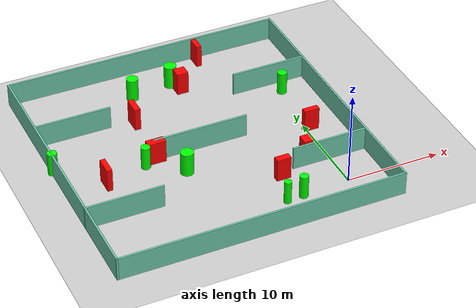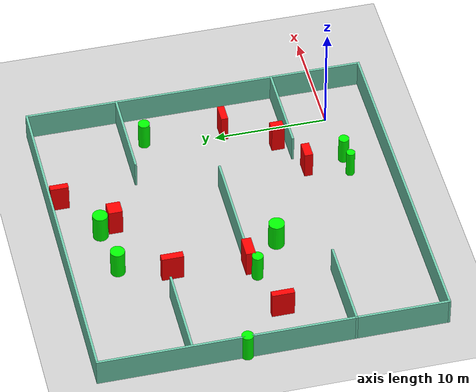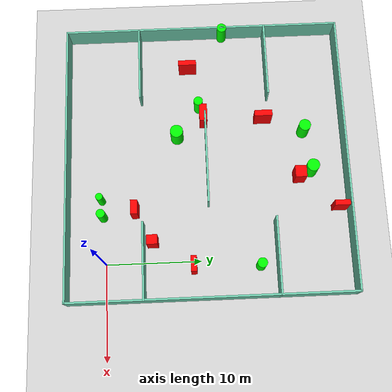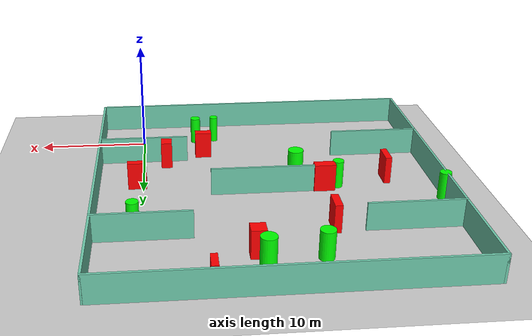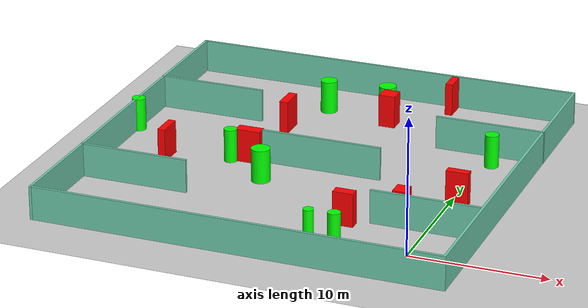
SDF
<sdf version="1.7">
 <world name="default">
  <light name="sun" type="directional">
   <pose>0 0 10 0 -0 0</pose>
   <diffuse>0.8 0.8 0.8 1</diffuse>
   <specular>0.2 0.2 0.2 1</specular>
   <attenuation>
    <range>1000</range>
    <constant>0.9</constant>
    <linear>0.01</linear>
    <quadratic>0.001</quadratic>
   </attenuation>
   <direction>-0.5 0.1 -0.9</direction>
   <spot><inner_angle>0</inner_angle><outer_angle>0</outer_angle><falloff>0</falloff></spot>
  </light>
  <model name="ground_plane">
   <static>1</static>
   <link name="link">
    <collision name="collision">
     <geometry><plane><normal>0 0 1</normal><size>100 100</size></plane></geometry>
     <surface>
      <contact><collide_bitmask>65535</collide_bitmask></contact>
      <friction><ode><mu>100</mu><mu2>50</mu2></ode></friction>
     </surface>
    </collision>
    <visual name="visual">
     <cast_shadows>0</cast_shadows>
     <geometry><plane><normal>0 0 1</normal><size>100 100</size></plane></geometry>
     <material>
      <script><uri>file://media/materials/scripts/gazebo.material</uri><name>Gazebo/Grey</name></script>
     </material>
    </visual>
   </link>
  </model>
  <gravity>0 0 -9.8</gravity>
  <magnetic_field>6e-06 2.3e-05 -4.2e-05</magnetic_field>
  <atmosphere type="adiabatic"/>
  <physics type="ode">
   <max_step_size>0.001</max_step_size>
   <real_time_factor>1</real_time_factor>
   <real_time_update_rate>1000</real_time_update_rate>
  </physics>
  <scene><ambient>0.4 0.4 0.4 1</ambient><background>0.7 0.7 0.7 1</background><shadows>1</shadows></scene>
  <spherical_coordinates>
   <surface_model>EARTH_WGS84</surface_model>
   <latitude_deg>0</latitude_deg>
   <longitude_deg>0</longitude_deg>
   <elevation>0</elevation>
   <heading_deg>0</heading_deg>
  </spherical_coordinates>
  <model name="my_base_walls">
   <link name="Wall_10">
    <collision name="Wall_10_Collision">
     <geometry><box><size>8.2 0.2 2.5</size></box></geometry>
     <pose>0 0 1.25 0 -0 0</pose>
    </collision>
    <visual name="Wall_10_Visual">
     <pose>0 0 1.25 0 -0 0</pose>
     <geometry><box><size>8.2 0.2 2.5</size></box></geometry>
     <material>
      <script><uri>file://media/materials/scripts/gazebo.material</uri><name>Gazebo/Grey</name></script>
      <ambient>0.435294 0.796078 0.67451 1</ambient>
     </material>
     <meta><layer>0</layer></meta>
    </visual>
    <pose>-11 -7 0 0 -0 0</pose>
   </link>
   <link name="Wall_12">
    <collision name="Wall_12_Collision">
     <geometry><box><size>8.2 0.2 2.5</size></box></geometry>
     <pose>0 0 1.25 0 -0 0</pose>
    </collision>
    <visual name="Wall_12_Visual">
     <pose>0 0 1.25 0 -0 0</pose>
     <geometry><box><size>8.2 0.2 2.5</size></box></geometry>
     <material>
      <script><uri>file://media/materials/scripts/gazebo.material</uri><name>Gazebo/Grey</name></script>
      <ambient>0.435294 0.796078 0.67451 1</ambient>
     </material>
     <meta><layer>0</layer></meta>
    </visual>
    <pose>-11 7 0 0 -0 0</pose>
   </link>
   <link name="Wall_14">
    <collision name="Wall_14_Collision">
     <geometry><box><size>8.2 0.2 2.5</size></box></geometry>
     <pose>0 0 1.25 0 -0 0</pose>
    </collision>
    <visual name="Wall_14_Visual">
     <pose>0 0 1.25 0 -0 0</pose>
     <geometry><box><size>8.2 0.2 2.5</size></box></geometry>
     <material>
      <script><uri>file://media/materials/scripts/gazebo.material</uri><name>Gazebo/Grey</name></script>
      <ambient>0.435294 0.796078 0.67451 1</ambient>
     </material>
     <meta><layer>0</layer></meta>
    </visual>
    <pose>11 7 0 0 -0 3.14159</pose>
   </link>
   <link name="Wall_16">
    <collision name="Wall_16_Collision">
     <geometry><box><size>10.2 0.2 2.5</size></box></geometry>
     <pose>0 0 1.25 0 -0 0</pose>
    </collision>
    <visual name="Wall_16_Visual">
     <pose>0 0 1.25 0 -0 0</pose>
     <geometry><box><size>10.2 0.2 2.5</size></box></geometry>
     <material>
      <script><uri>file://media/materials/scripts/gazebo.material</uri><name>Gazebo/Grey</name></script>
      <ambient>0.435294 0.796078 0.67451 1</ambient>
     </material>
     <meta><layer>0</layer></meta>
    </visual>
    <pose>0 0 0 0 -0 3.14159</pose>
   </link>
   <link name="Wall_2">
    <collision name="Wall_2_Collision">
     <geometry><box><size>30.2 0.2 2.5</size></box></geometry>
     <pose>0 0 1.25 0 -0 0</pose>
    </collision>
    <visual name="Wall_2_Visual">
     <pose>0 0 1.25 0 -0 0</pose>
     <geometry><box><size>30.2 0.2 2.5</size></box></geometry>
     <material>
      <script><uri>file://media/materials/scripts/gazebo.material</uri><name>Gazebo/Grey</name></script>
      <ambient>0.435294 0.796078 0.67451 1</ambient>
     </material>
     <meta><layer>0</layer></meta>
    </visual>
    <pose>0 -15 0 0 -0 3.14159</pose>
   </link>
   <link name="Wall_3">
    <collision name="Wall_3_Collision">
     <geometry><box><size>30.2 0.2 2.5</size></box></geometry>
     <pose>0 0 1.25 0 -0 0</pose>
    </collision>
    <visual name="Wall_3_Visual">
     <pose>0 0 1.25 0 -0 0</pose>
     <geometry><box><size>30.2 0.2 2.5</size></box></geometry>
     <material>
      <script><uri>file://media/materials/scripts/gazebo.material</uri><name>Gazebo/Grey</name></script>
      <ambient>0.435294 0.796078 0.67451 1</ambient>
     </material>
     <meta><layer>0</layer></meta>
    </visual>
    <pose>-15 0 0 0 -0 1.5708</pose>
   </link>
   <link name="Wall_4">
    <collision name="Wall_4_Collision">
     <geometry><box><size>30.2 0.2 2.5</size></box></geometry>
     <pose>0 0 1.25 0 -0 0</pose>
    </collision>
    <visual name="Wall_4_Visual">
     <pose>0 0 1.25 0 -0 0</pose>
     <geometry><box><size>30.2 0.2 2.5</size></box></geometry>
     <material>
      <script><uri>file://media/materials/scripts/gazebo.material</uri><name>Gazebo/Grey</name></script>
      <ambient>0.435294 0.796078 0.67451 1</ambient>
     </material>
     <meta><layer>0</layer></meta>
    </visual>
    <pose>0 15 0 0 -0 0</pose>
   </link>
   <link name="Wall_6">
    <collision name="Wall_6_Collision">
     <geometry><box><size>30.2 0.2 2.5</size></box></geometry>
     <pose>0 0 1.25 0 -0 0</pose>
    </collision>
    <visual name="Wall_6_Visual">
     <pose>0 0 1.25 0 -0 0</pose>
     <geometry><box><size>30.2 0.2 2.5</size></box></geometry>
     <material>
      <script><uri>file://media/materials/scripts/gazebo.material</uri><name>Gazebo/Grey</name></script>
      <ambient>0.435294 0.796078 0.67451 1</ambient>
     </material>
     <meta><layer>0</layer></meta>
    </visual>
    <pose>15 0 0 0 -0 1.5708</pose>
   </link>
   <link name="Wall_8">
    <collision name="Wall_8_Collision">
     <geometry><box><size>8.2 0.2 2.5</size></box></geometry>
     <pose>0 0 1.25 0 -0 0</pose>
    </collision>
    <visual name="Wall_8_Visual">
     <pose>0 0 1.25 0 -0 0</pose>
     <geometry><box><size>8.2 0.2 2.5</size></box></geometry>
     <material>
      <script><uri>file://media/materials/scripts/gazebo.material</uri><name>Gazebo/Grey</name></script>
      <ambient>0.435294 0.796078 0.67451 1</ambient>
     </material>
     <meta><layer>0</layer></meta>
    </visual>
    <pose>11 -7 0 0 -0 3.14159</pose>
   </link>
   <static>1</static>
   <pose>-11 11 0 0 -0 0</pose>
  </model>
  <model name="cylinder1">
   <static>1</static>
   <link name="link">
    <inertial>
     <mass>1</mass>
     <inertia><ixx>0.5</ixx><ixy>0</ixy><ixz>0</ixz><iyy>0.5</iyy><iyz>0</iyz><izz>1</izz></inertia>
    </inertial>
    <collision name="collision">
     <geometry><cylinder><radius>0.5124069826570194</radius><length>2.5</length></cylinder></geometry>
    </collision>
    <visual name="visual">
     <geometry><cylinder><radius>0.5124069826570194</radius><length>2.5</length></cylinder></geometry>
     <material>
      <ambient>0 1 0 1</ambient>
      <diffuse>0 1 0 1</diffuse>
      <specular>0.1 0.1 0.1 1</specular>
      <emissive>0 0 0 0</emissive>
     </material>
    </visual>
   </link>
   <pose>-25.911758618130886 13.280358795591937 1.25 0 0 0</pose>
  </model>
  <model name="cylinder2">
   <static>1</static>
   <link name="link">
    <inertial>
     <mass>1</mass>
     <inertia><ixx>0.5</ixx><ixy>0</ixy><ixz>0</ixz><iyy>0.5</iyy><iyz>0</iyz><izz>1</izz></inertia>
    </inertial>
    <collision name="collision">
     <geometry><cylinder><radius>0.6716190517138798</radius><length>2.5</length></cylinder></geometry>
    </collision>
    <visual name="visual">
     <geometry><cylinder><radius>0.6716190517138798</radius><length>2.5</length></cylinder></geometry>
     <material>
      <ambient>0 1 0 1</ambient>
      <diffuse>0 1 0 1</diffuse>
      <specular>0.1 0.1 0.1 1</specular>
      <emissive>0 0 0 0</emissive>
     </material>
    </visual>
   </link>
   <pose>-9.434324635482298 22.26704711069265 1.25 0 0 0</pose>
  </model>
  <model name="cylinder3">
   <static>1</static>
   <link name="link">
    <inertial>
     <mass>1</mass>
     <inertia><ixx>0.5</ixx><ixy>0</ixy><ixz>0</ixz><iyy>0.5</iyy><iyz>0</iyz><izz>1</izz></inertia>
    </inertial>
    <collision name="collision">
     <geometry><cylinder><radius>0.6974398194357186</radius><length>2.5</length></cylinder></geometry>
    </collision>
    <visual name="visual">
     <geometry><cylinder><radius>0.6974398194357186</radius><length>2.5</length></cylinder></geometry>
     <material>
      <ambient>0 1 0 1</ambient>
      <diffuse>0 1 0 1</diffuse>
      <specular>0.1 0.1 0.1 1</specular>
      <emissive>0 0 0 0</emissive>
     </material>
    </visual>
   </link>
   <pose>-13.825108734730957 7.853250381351497 1.25 0 0 0</pose>
  </model>
  <model name="cylinder4">
   <static>1</static>
   <link name="link">
    <inertial>
     <mass>1</mass>
     <inertia><ixx>0.5</ixx><ixy>0</ixy><ixz>0</ixz><iyy>0.5</iyy><iyz>0</iyz><izz>1</izz></inertia>
    </inertial>
    <collision name="collision">
     <geometry><cylinder><radius>0.37998305058584153</radius><length>2.5</length></cylinder></geometry>
    </collision>
    <visual name="visual">
     <geometry><cylinder><radius>0.37998305058584153</radius><length>2.5</length></cylinder></geometry>
     <material>
      <ambient>0 1 0 1</ambient>
      <diffuse>0 1 0 1</diffuse>
      <specular>0.1 0.1 0.1 1</specular>
      <emissive>0 0 0 0</emissive>
     </material>
    </visual>
   </link>
   <pose>-6.897828882217198 -0.46548931539672944 1.25 0 0 0</pose>
  </model>
  <model name="cylinder5">
   <static>1</static>
   <link name="link">
    <inertial>
     <mass>1</mass>
     <inertia><ixx>0.5</ixx><ixy>0</ixy><ixz>0</ixz><iyy>0.5</iyy><iyz>0</iyz><izz>1</izz></inertia>
    </inertial>
    <collision name="collision">
     <geometry><cylinder><radius>0.4608420664067292</radius><length>2.5</length></cylinder></geometry>
    </collision>
    <visual name="visual">
     <geometry><cylinder><radius>0.4608420664067292</radius><length>2.5</length></cylinder></geometry>
     <material>
      <ambient>0 1 0 1</ambient>
      <diffuse>0 1 0 1</diffuse>
      <specular>0.1 0.1 0.1 1</specular>
      <emissive>0 0 0 0</emissive>
     </material>
    </visual>
   </link>
   <pose>-5.084694465875703 -0.3237903729176974 1.25 0 0 0</pose>
  </model>
  <model name="cylinder6">
   <static>1</static>
   <link name="link">
    <inertial>
     <mass>1</mass>
     <inertia><ixx>0.5</ixx><ixy>0</ixy><ixz>0</ixz><iyy>0.5</iyy><iyz>0</iyz><izz>1</izz></inertia>
    </inertial>
    <collision name="collision">
     <geometry><cylinder><radius>0.48729648969232847</radius><length>2.5</length></cylinder></geometry>
    </collision>
    <visual name="visual">
     <geometry><cylinder><radius>0.48729648969232847</radius><length>2.5</length></cylinder></geometry>
     <material>
      <ambient>0 1 0 1</ambient>
      <diffuse>0 1 0 1</diffuse>
      <specular>0.1 0.1 0.1 1</specular>
      <emissive>0 0 0 0</emissive>
     </material>
    </visual>
   </link>
   <pose>-17.214389309195166 10.328525960065107 1.25 0 0 0</pose>
  </model>
  <model name="cylinder7">
   <static>1</static>
   <link name="link">
    <inertial>
     <mass>1</mass>
     <inertia><ixx>0.5</ixx><ixy>0</ixy><ixz>0</ixz><iyy>0.5</iyy><iyz>0</iyz><izz>1</izz></inertia>
    </inertial>
    <collision name="collision">
     <geometry><cylinder><radius>0.5177614943124834</radius><length>2.5</length></cylinder></geometry>
    </collision>
    <visual name="visual">
     <geometry><cylinder><radius>0.5177614943124834</radius><length>2.5</length></cylinder></geometry>
     <material>
      <ambient>0 1 0 1</ambient>
      <diffuse>0 1 0 1</diffuse>
      <specular>0.1 0.1 0.1 1</specular>
      <emissive>0 0 0 0</emissive>
     </material>
    </visual>
   </link>
   <pose>0.7365039673470086 16.218311119846717 1.25 0 0 0</pose>
  </model>
  <model name="cylinder8">
   <static>1</static>
   <link name="link">
    <inertial>
     <mass>1</mass>
     <inertia><ixx>0.5</ixx><ixy>0</ixy><ixz>0</ixz><iyy>0.5</iyy><iyz>0</iyz><izz>1</izz></inertia>
    </inertial>
    <collision name="collision">
     <geometry><cylinder><radius>0.6328120905393392</radius><length>2.5</length></cylinder></geometry>
    </collision>
    <visual name="visual">
     <geometry><cylinder><radius>0.6328120905393392</radius><length>2.5</length></cylinder></geometry>
     <material>
      <ambient>0 1 0 1</ambient>
      <diffuse>0 1 0 1</diffuse>
      <specular>0.1 0.1 0.1 1</specular>
      <emissive>0 0 0 0</emissive>
     </material>
    </visual>
   </link>
   <pose>-13.961163823828162 21.719035281760448 1.25 0 0 0</pose>
  </model>
  <model name="box1">
   <static>1</static>
   <link name="link">
    <inertial>
     <mass>1</mass>
     <inertia><ixx>0.083</ixx><ixy>0</ixy><ixz>0</ixz><iyy>0.083</iyy><iyz>0</iyz><izz>0.083</izz></inertia>
    </inertial>
    <collision name="collision">
     <geometry><box><size>1.6422212245185426 0.62004237922376 2.5</size></box></geometry>
    </collision>
    <visual name="visual">
     <geometry><box><size>1.6422212245185426 0.62004237922376 2.5</size></box></geometry>
     <material>
      <ambient>1 0 0 1</ambient>
      <diffuse>1 0 0 1</diffuse>
      <specular>0.1 0.1 0.1 1</specular>
      <emissive>0 0 0 0</emissive>
     </material>
    </visual>
    <sensor name="my_contact" type="contact">
     <contact><collision>box_collision</collision><topic>__default_topic__</topic></contact>
    </sensor>
   </link>
   <pose>0.5096087749886422 9.208088554397595 1.25 0 0 0</pose>
  </model>
  <model name="box2">
   <static>1</static>
   <link name="link">
    <inertial>
     <mass>1</mass>
     <inertia><ixx>0.083</ixx><ixy>0</ixy><ixz>0</ixz><iyy>0.083</iyy><iyz>0</iyz><izz>0.083</izz></inertia>
    </inertial>
    <collision name="collision">
     <geometry><box><size>1.8737657192926123 0.8487967179014222 2.5</size></box></geometry>
    </collision>
    <visual name="visual">
     <geometry><box><size>1.8737657192926123 0.8487967179014222 2.5</size></box></geometry>
     <material>
      <ambient>1 0 0 1</ambient>
      <diffuse>1 0 0 1</diffuse>
      <specular>0.1 0.1 0.1 1</specular>
      <emissive>0 0 0 0</emissive>
     </material>
    </visual>
    <sensor name="my_contact" type="contact">
     <contact><collision>box_collision</collision><topic>__default_topic__</topic></contact>
    </sensor>
   </link>
   <pose>-15.90903387883502 10.808575450543367 1.25 0 0 0</pose>
  </model>
  <model name="box3">
   <static>1</static>
   <link name="link">
    <inertial>
     <mass>1</mass>
     <inertia><ixx>0.083</ixx><ixy>0</ixy><ixz>0</ixz><iyy>0.083</iyy><iyz>0</iyz><izz>0.083</izz></inertia>
    </inertial>
    <collision name="collision">
     <geometry><box><size>0.997988482708267 1.1444351617232318 2.5</size></box></geometry>
    </collision>
    <visual name="visual">
     <geometry><box><size>0.997988482708267 1.1444351617232318 2.5</size></box></geometry>
     <material>
      <ambient>1 0 0 1</ambient>
      <diffuse>1 0 0 1</diffuse>
      <specular>0.1 0.1 0.1 1</specular>
      <emissive>0 0 0 0</emissive>
     </material>
    </visual>
    <sensor name="my_contact" type="contact">
     <contact><collision>box_collision</collision><topic>__default_topic__</topic></contact>
    </sensor>
   </link>
   <pose>-2.1419633363636805 4.949534970038074 1.25 0 0 0</pose>
  </model>
  <model name="box4">
   <static>1</static>
   <link name="link">
    <inertial>
     <mass>1</mass>
     <inertia><ixx>0.083</ixx><ixy>0</ixy><ixz>0</ixz><iyy>0.083</iyy><iyz>0</iyz><izz>0.083</izz></inertia>
    </inertial>
    <collision name="collision">
     <geometry><box><size>0.5602785129923269 1.9554459348715827 2.5</size></box></geometry>
    </collision>
    <visual name="visual">
     <geometry><box><size>0.5602785129923269 1.9554459348715827 2.5</size></box></geometry>
     <material>
      <ambient>1 0 0 1</ambient>
      <diffuse>1 0 0 1</diffuse>
      <specular>0.1 0.1 0.1 1</specular>
      <emissive>0 0 0 0</emissive>
     </material>
    </visual>
    <sensor name="my_contact" type="contact">
     <contact><collision>box_collision</collision><topic>__default_topic__</topic></contact>
    </sensor>
   </link>
   <pose>-21.803783805714566 9.27278035401463 1.25 0 0 0</pose>
  </model>
  <model name="box5">
   <static>1</static>
   <link name="link">
    <inertial>
     <mass>1</mass>
     <inertia><ixx>0.083</ixx><ixy>0</ixy><ixz>0</ixz><iyy>0.083</iyy><iyz>0</iyz><izz>0.083</izz></inertia>
    </inertial>
    <collision name="collision">
     <geometry><box><size>1.2464086985460794 1.2229164555542487 2.5</size></box></geometry>
    </collision>
    <visual name="visual">
     <geometry><box><size>1.2464086985460794 1.2229164555542487 2.5</size></box></geometry>
     <material>
      <ambient>1 0 0 1</ambient>
      <diffuse>1 0 0 1</diffuse>
      <specular>0.1 0.1 0.1 1</specular>
      <emissive>0 0 0 0</emissive>
     </material>
    </visual>
    <sensor name="my_contact" type="contact">
     <contact><collision>box_collision</collision><topic>__default_topic__</topic></contact>
    </sensor>
   </link>
   <pose>-8.81081347844421 20.904851439019694 1.25 0 0 0</pose>
  </model>
  <model name="box6">
   <static>1</static>
   <link name="link">
    <inertial>
     <mass>1</mass>
     <inertia><ixx>0.083</ixx><ixy>0</ixy><ixz>0</ixz><iyy>0.083</iyy><iyz>0</iyz><izz>0.083</izz></inertia>
    </inertial>
    <collision name="collision">
     <geometry><box><size>0.5575463728166288 1.6092456624418272 2.5</size></box></geometry>
    </collision>
    <visual name="visual">
     <geometry><box><size>0.5575463728166288 1.6092456624418272 2.5</size></box></geometry>
     <material>
      <ambient>1 0 0 1</ambient>
      <diffuse>1 0 0 1</diffuse>
      <specular>0.1 0.1 0.1 1</specular>
      <emissive>0 0 0 0</emissive>
     </material>
    </visual>
    <sensor name="my_contact" type="contact">
     <contact><collision>box_collision</collision><topic>__default_topic__</topic></contact>
    </sensor>
   </link>
   <pose>-5.229683357141656 24.99392714371321 1.25 0 0 0</pose>
  </model>
  <model name="box7">
   <static>1</static>
   <link name="link">
    <inertial>
     <mass>1</mass>
     <inertia><ixx>0.083</ixx><ixy>0</ixy><ixz>0</ixz><iyy>0.083</iyy><iyz>0</iyz><izz>0.083</izz></inertia>
    </inertial>
    <collision name="collision">
     <geometry><box><size>0.6431612844688267 1.9117595067282234 2.5</size></box></geometry>
    </collision>
    <visual name="visual">
     <geometry><box><size>0.6431612844688267 1.9117595067282234 2.5</size></box></geometry>
     <material>
      <ambient>1 0 0 1</ambient>
      <diffuse>1 0 0 1</diffuse>
      <specular>0.1 0.1 0.1 1</specular>
      <emissive>0 0 0 0</emissive>
     </material>
    </visual>
    <sensor name="my_contact" type="contact">
     <contact><collision>box_collision</collision><topic>__default_topic__</topic></contact>
    </sensor>
   </link>
   <pose>-15.542140022060675 17.34191425614312 1.25 0 0 0</pose>
  </model>
  <model name="box8">
   <static>1</static>
   <link name="link">
    <inertial>
     <mass>1</mass>
     <inertia><ixx>0.083</ixx><ixy>0</ixy><ixz>0</ixz><iyy>0.083</iyy><iyz>0</iyz><izz>0.083</izz></inertia>
    </inertial>
    <collision name="collision">
     <geometry><box><size>1.5104648563977527 0.7374635685124987 2.5</size></box></geometry>
    </collision>
    <visual name="visual">
     <geometry><box><size>1.5104648563977527 0.7374635685124987 2.5</size></box></geometry>
     <material>
      <ambient>1 0 0 1</ambient>
      <diffuse>1 0 0 1</diffuse>
      <specular>0.1 0.1 0.1 1</specular>
      <emissive>0 0 0 0</emissive>
     </material>
    </visual>
    <sensor name="my_contact" type="contact">
     <contact><collision>box_collision</collision><topic>__default_topic__</topic></contact>
    </sensor>
   </link>
   <pose>-5.659849085156573 3.1425586836013206 1.25 0 0 0</pose>
  </model>
 </world>
</sdf>
